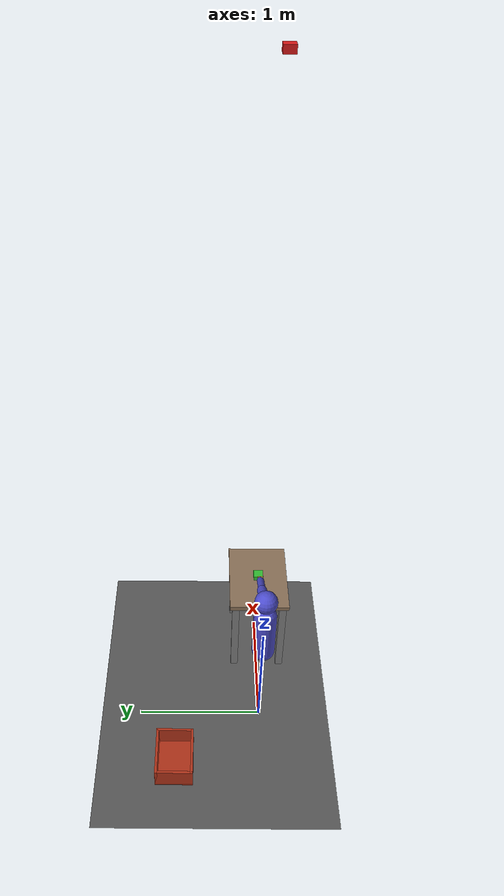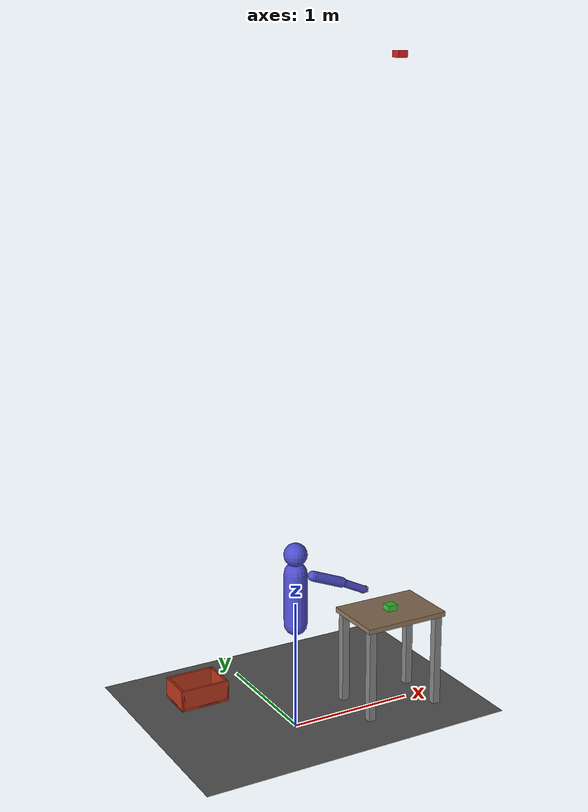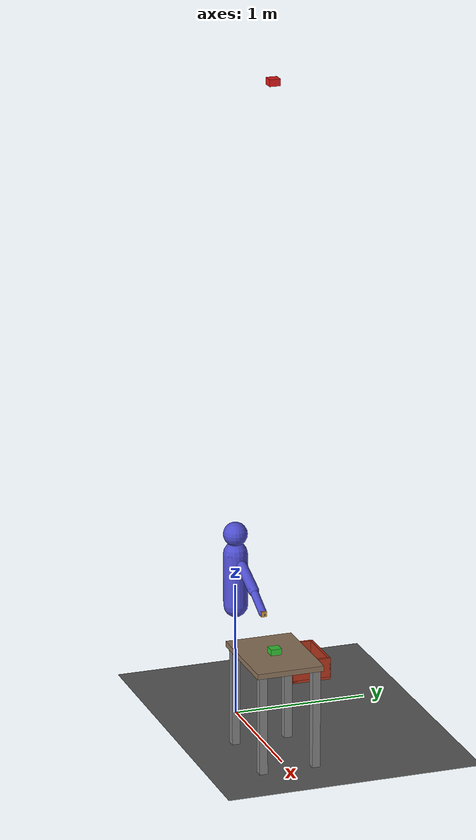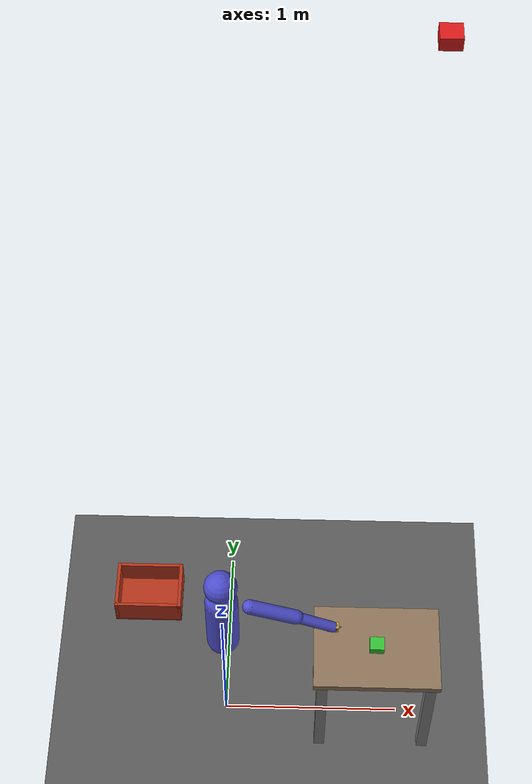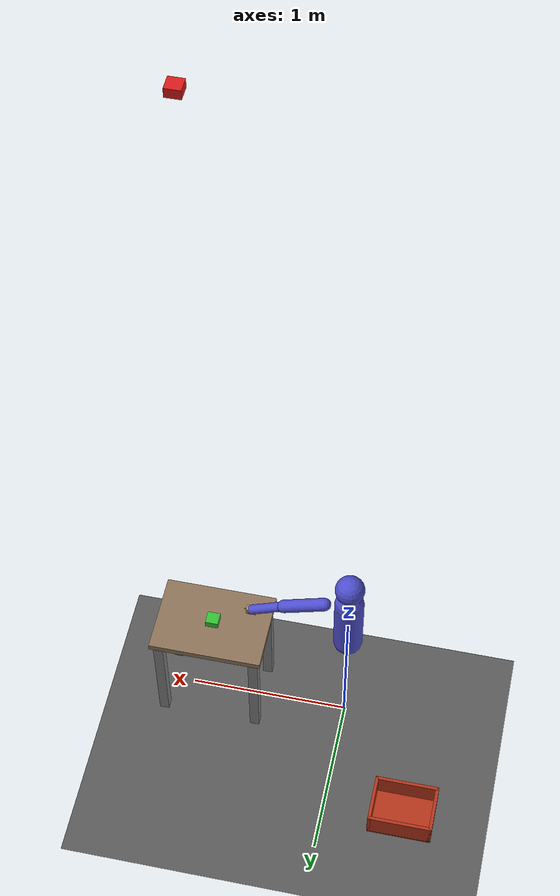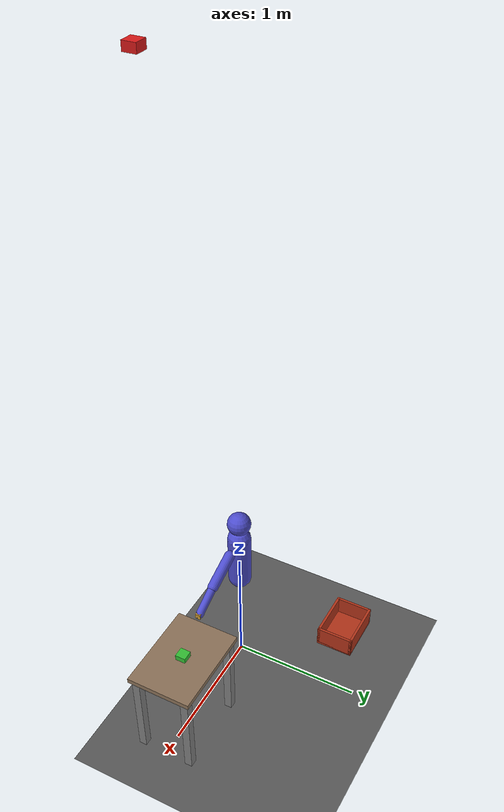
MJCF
<!-- Standalone scene (no G1 MJCF required) for testing scene layout.
     Run: python -m mujoco.viewer --mjcf scene/inspection_scene_standalone.xml -->
<mujoco model="inspection_scene_standalone">
  <compiler angle="radian" autolimits="true"/>
  <option timestep="0.004" gravity="0 0 -9.81"/>

  <asset>
    <texture name="floor_tex" type="2d" builtin="checker"
             rgb1="0.4 0.4 0.4" rgb2="0.3 0.3 0.3" width="512" height="512"/>
    <material name="floor_mat" texture="floor_tex" texrepeat="8 8" reflectance="0.1"/>
    <material name="table_mat" rgba="0.55 0.45 0.35 1"/>
    <material name="bin_mat" rgba="0.7 0.2 0.1 1"/>
    <material name="part_good" rgba="0.2 0.75 0.2 1"/>
    <material name="part_crack" rgba="0.85 0.1 0.1 1"/>
    <material name="part_discolor" rgba="0.25 0.25 0.25 1"/>

    <!-- Simple robot placeholder (capsule torso + arm) -->
    <material name="robot_body" rgba="0.3 0.3 0.8 1"/>
  </asset>

  <worldbody>
    <light name="light_main" pos="0 0 3" dir="0 0 -1" diffuse="0.9 0.9 0.9" castshadow="true"/>
    <light name="light_fill"  pos="-2 1 2" dir="0.4 -0.2 -1" diffuse="0.3 0.3 0.4"/>

    <geom name="floor" type="plane" size="5 5 0.1" material="floor_mat"/>

    <!-- Work table -->
    <body name="work_table" pos="0.85 0 0">
      <geom name="table_top" type="box" size="0.35 0.25 0.02" pos="0 0 0.76" material="table_mat"/>
      <geom name="table_leg_fl" type="box" size="0.03 0.03 0.37" pos="-0.30 -0.20 0.37"/>
      <geom name="table_leg_fr" type="box" size="0.03 0.03 0.37" pos=" 0.30 -0.20 0.37"/>
      <geom name="table_leg_bl" type="box" size="0.03 0.03 0.37" pos="-0.30  0.20 0.37"/>
      <geom name="table_leg_br" type="box" size="0.03 0.03 0.37" pos=" 0.30  0.20 0.37"/>
    </body>

    <!-- Reject bin -->
    <body name="reject_bin" pos="-0.5 0.7 0">
      <geom type="box" size="0.20 0.15 0.01" pos="0 0 0.05" material="bin_mat"/>
      <geom type="box" size="0.01 0.15 0.08" pos="-0.19 0 0.13" material="bin_mat"/>
      <geom type="box" size="0.01 0.15 0.08" pos=" 0.19 0 0.13" material="bin_mat"/>
      <geom type="box" size="0.20 0.01 0.08" pos="0 -0.14 0.13" material="bin_mat"/>
      <geom type="box" size="0.20 0.01 0.08" pos="0  0.14 0.13" material="bin_mat"/>
    </body>

    <!-- Robot placeholder: torso + head + right arm segments -->
    <body name="robot_base" pos="0 0 0">
      <geom name="torso" type="capsule" fromto="0 0 0.85  0 0 1.25" size="0.09" material="robot_body"/>
      <geom name="head"  type="sphere"  pos="0 0 1.40" size="0.09" material="robot_body"/>

      <!-- Head camera — looking toward table (+X direction, 35° down) -->
      <camera name="head_cam" pos="0 0.09 1.40" xyaxes="0 -1 0 0.574 0 0.819" fovy="75"/>

      <!-- Right arm: shoulder → elbow → wrist -->
      <body name="r_upper_arm" pos="0.15 0 1.20">
        <geom type="capsule" fromto="0 0 0  0.25 0 -0.10" size="0.04" material="robot_body"/>
        <body name="r_forearm" pos="0.25 0 -0.10">
          <geom type="capsule" fromto="0 0 0  0.20 0 -0.10" size="0.03" material="robot_body"/>
          <body name="r_hand" pos="0.20 0 -0.10">
            <geom name="gripper" type="box" size="0.03 0.02 0.02" rgba="0.8 0.6 0.2 1"/>
            <!-- Gripper fingertip site for IK -->
            <site name="r_gripper_site" pos="0.04 0 0"/>
          </body>
        </body>
      </body>
    </body>

    <!-- Inspection parts (3 classes) -->
    <body name="part_0" pos="0.85 0 0.80">
      <freejoint/>
      <geom name="part_0_geom" type="box" size="0.04 0.04 0.025" material="part_good" mass="0.05"/>
    </body>
    <body name="part_1" pos="0.85 0 5.0">
      <freejoint/>
      <geom name="part_1_geom" type="box" size="0.04 0.04 0.025" material="part_crack" mass="0.05"/>
    </body>
    <body name="part_2" pos="0.85 0 5.0">
      <freejoint/>
      <geom name="part_2_geom" type="box" size="0.04 0.04 0.025" material="part_discolor" mass="0.05"/>
    </body>

  </worldbody>
</mujoco>
